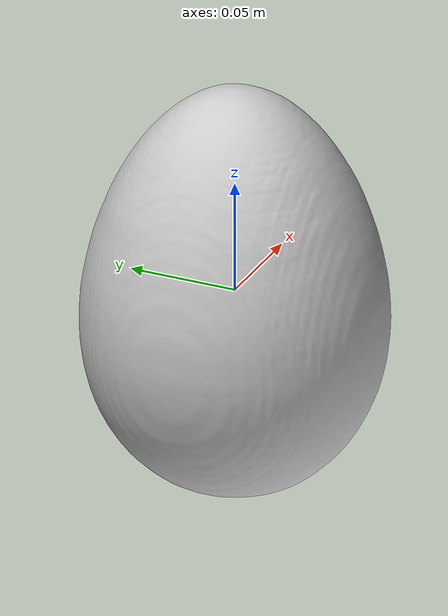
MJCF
<mujoco model="plate_54">
  <asset>
    <mesh file="visual/model_normalized_0.obj" name="model_normalized_0_vis" scale="0.185 0.185 0.185" refquat="1.0 0.0 0.0 0.0"/>
    <mesh file="collision/model_normalized_collision_22.obj" name="model_normalized_collision_22._coll" scale="0.185 0.185 0.185" refquat="1.0 0.0 0.0 0.0"/>
    <mesh file="collision/model_normalized_collision_23.obj" name="model_normalized_collision_23._coll" scale="0.185 0.185 0.185" refquat="1.0 0.0 0.0 0.0"/>
    <mesh file="collision/model_normalized_collision_21.obj" name="model_normalized_collision_21._coll" scale="0.185 0.185 0.185" refquat="1.0 0.0 0.0 0.0"/>
    <mesh file="collision/model_normalized_collision_20.obj" name="model_normalized_collision_20._coll" scale="0.185 0.185 0.185" refquat="1.0 0.0 0.0 0.0"/>
    <mesh file="collision/model_normalized_collision_24.obj" name="model_normalized_collision_24._coll" scale="0.185 0.185 0.185" refquat="1.0 0.0 0.0 0.0"/>
    <mesh file="collision/model_normalized_collision_30.obj" name="model_normalized_collision_30._coll" scale="0.185 0.185 0.185" refquat="1.0 0.0 0.0 0.0"/>
    <mesh file="collision/model_normalized_collision_18.obj" name="model_normalized_collision_18._coll" scale="0.185 0.185 0.185" refquat="1.0 0.0 0.0 0.0"/>
    <mesh file="collision/model_normalized_collision_19.obj" name="model_normalized_collision_19._coll" scale="0.185 0.185 0.185" refquat="1.0 0.0 0.0 0.0"/>
    <mesh file="collision/model_normalized_collision_31.obj" name="model_normalized_collision_31._coll" scale="0.185 0.185 0.185" refquat="1.0 0.0 0.0 0.0"/>
    <mesh file="collision/model_normalized_collision_25.obj" name="model_normalized_collision_25._coll" scale="0.185 0.185 0.185" refquat="1.0 0.0 0.0 0.0"/>
    <mesh file="collision/model_normalized_collision_27.obj" name="model_normalized_collision_27._coll" scale="0.185 0.185 0.185" refquat="1.0 0.0 0.0 0.0"/>
    <mesh file="collision/model_normalized_collision_26.obj" name="model_normalized_collision_26._coll" scale="0.185 0.185 0.185" refquat="1.0 0.0 0.0 0.0"/>
    <mesh file="collision/model_normalized_collision_9.obj" name="model_normalized_collision_9._coll" scale="0.185 0.185 0.185" refquat="1.0 0.0 0.0 0.0"/>
    <mesh file="collision/model_normalized_collision_8.obj" name="model_normalized_collision_8._coll" scale="0.185 0.185 0.185" refquat="1.0 0.0 0.0 0.0"/>
    <mesh file="collision/model_normalized_collision_6.obj" name="model_normalized_collision_6._coll" scale="0.185 0.185 0.185" refquat="1.0 0.0 0.0 0.0"/>
    <mesh file="collision/model_normalized_collision_7.obj" name="model_normalized_collision_7._coll" scale="0.185 0.185 0.185" refquat="1.0 0.0 0.0 0.0"/>
    <mesh file="collision/model_normalized_collision_5.obj" name="model_normalized_collision_5._coll" scale="0.185 0.185 0.185" refquat="1.0 0.0 0.0 0.0"/>
    <mesh file="collision/model_normalized_collision_4.obj" name="model_normalized_collision_4._coll" scale="0.185 0.185 0.185" refquat="1.0 0.0 0.0 0.0"/>
    <mesh file="collision/model_normalized_collision_0.obj" name="model_normalized_collision_0._coll" scale="0.185 0.185 0.185" refquat="1.0 0.0 0.0 0.0"/>
    <mesh file="collision/model_normalized_collision_1.obj" name="model_normalized_collision_1._coll" scale="0.185 0.185 0.185" refquat="1.0 0.0 0.0 0.0"/>
    <mesh file="collision/model_normalized_collision_3.obj" name="model_normalized_collision_3._coll" scale="0.185 0.185 0.185" refquat="1.0 0.0 0.0 0.0"/>
    <mesh file="collision/model_normalized_collision_2.obj" name="model_normalized_collision_2._coll" scale="0.185 0.185 0.185" refquat="1.0 0.0 0.0 0.0"/>
    <mesh file="collision/model_normalized_collision_17.obj" name="model_normalized_collision_17._coll" scale="0.185 0.185 0.185" refquat="1.0 0.0 0.0 0.0"/>
    <mesh file="collision/model_normalized_collision_16.obj" name="model_normalized_collision_16._coll" scale="0.185 0.185 0.185" refquat="1.0 0.0 0.0 0.0"/>
    <mesh file="collision/model_normalized_collision_28.obj" name="model_normalized_collision_28._coll" scale="0.185 0.185 0.185" refquat="1.0 0.0 0.0 0.0"/>
    <mesh file="collision/model_normalized_collision_14.obj" name="model_normalized_collision_14._coll" scale="0.185 0.185 0.185" refquat="1.0 0.0 0.0 0.0"/>
    <mesh file="collision/model_normalized_collision_15.obj" name="model_normalized_collision_15._coll" scale="0.185 0.185 0.185" refquat="1.0 0.0 0.0 0.0"/>
    <mesh file="collision/model_normalized_collision_29.obj" name="model_normalized_collision_29._coll" scale="0.185 0.185 0.185" refquat="1.0 0.0 0.0 0.0"/>
    <mesh file="collision/model_normalized_collision_11.obj" name="model_normalized_collision_11._coll" scale="0.185 0.185 0.185" refquat="1.0 0.0 0.0 0.0"/>
    <mesh file="collision/model_normalized_collision_10.obj" name="model_normalized_collision_10._coll" scale="0.185 0.185 0.185" refquat="1.0 0.0 0.0 0.0"/>
    <mesh file="collision/model_normalized_collision_12.obj" name="model_normalized_collision_12._coll" scale="0.185 0.185 0.185" refquat="1.0 0.0 0.0 0.0"/>
    <mesh file="collision/model_normalized_collision_13.obj" name="model_normalized_collision_13._coll" scale="0.185 0.185 0.185" refquat="1.0 0.0 0.0 0.0"/>
    <material name="Material.392" specular="0.12" shininess="0.08" rgba="0.800000 0.800000 0.800000 1.0"/>
  </asset>
  <custom><text name="material_gt" data="rigid_plastic"/></custom>
  <default>
    <default class="region">
      <geom group="1" conaffinity="0" contype="0" rgba="0 1 0 0"/>
    </default>
  </default>
  <worldbody>
    <body>
      <body name="object">
        <geom solimp="0.998 0.998 0.001" solref="0.001 1" density="100" friction="0.95 0.3 0.1" type="mesh" mesh="model_normalized_0_vis" conaffinity="0" contype="0" group="1" material="Material.392"/>
        <geom solimp="0.998 0.998 0.001" solref="0.001 1" density="100" friction="0.95 0.3 0.1" type="mesh" mesh="model_normalized_collision_22._coll" group="0" rgba="0.8 0.8 0.8 0.0"/>
        <geom solimp="0.998 0.998 0.001" solref="0.001 1" density="100" friction="0.95 0.3 0.1" type="mesh" mesh="model_normalized_collision_23._coll" group="0" rgba="0.8 0.8 0.8 0.0"/>
        <geom solimp="0.998 0.998 0.001" solref="0.001 1" density="100" friction="0.95 0.3 0.1" type="mesh" mesh="model_normalized_collision_21._coll" group="0" rgba="0.8 0.8 0.8 0.0"/>
        <geom solimp="0.998 0.998 0.001" solref="0.001 1" density="100" friction="0.95 0.3 0.1" type="mesh" mesh="model_normalized_collision_20._coll" group="0" rgba="0.8 0.8 0.8 0.0"/>
        <geom solimp="0.998 0.998 0.001" solref="0.001 1" density="100" friction="0.95 0.3 0.1" type="mesh" mesh="model_normalized_collision_24._coll" group="0" rgba="0.8 0.8 0.8 0.0"/>
        <geom solimp="0.998 0.998 0.001" solref="0.001 1" density="100" friction="0.95 0.3 0.1" type="mesh" mesh="model_normalized_collision_30._coll" group="0" rgba="0.8 0.8 0.8 0.0"/>
        <geom solimp="0.998 0.998 0.001" solref="0.001 1" density="100" friction="0.95 0.3 0.1" type="mesh" mesh="model_normalized_collision_18._coll" group="0" rgba="0.8 0.8 0.8 0.0"/>
        <geom solimp="0.998 0.998 0.001" solref="0.001 1" density="100" friction="0.95 0.3 0.1" type="mesh" mesh="model_normalized_collision_19._coll" group="0" rgba="0.8 0.8 0.8 0.0"/>
        <geom solimp="0.998 0.998 0.001" solref="0.001 1" density="100" friction="0.95 0.3 0.1" type="mesh" mesh="model_normalized_collision_31._coll" group="0" rgba="0.8 0.8 0.8 0.0"/>
        <geom solimp="0.998 0.998 0.001" solref="0.001 1" density="100" friction="0.95 0.3 0.1" type="mesh" mesh="model_normalized_collision_25._coll" group="0" rgba="0.8 0.8 0.8 0.0"/>
        <geom solimp="0.998 0.998 0.001" solref="0.001 1" density="100" friction="0.95 0.3 0.1" type="mesh" mesh="model_normalized_collision_27._coll" group="0" rgba="0.8 0.8 0.8 0.0"/>
        <geom solimp="0.998 0.998 0.001" solref="0.001 1" density="100" friction="0.95 0.3 0.1" type="mesh" mesh="model_normalized_collision_26._coll" group="0" rgba="0.8 0.8 0.8 0.0"/>
        <geom solimp="0.998 0.998 0.001" solref="0.001 1" density="100" friction="0.95 0.3 0.1" type="mesh" mesh="model_normalized_collision_9._coll" group="0" rgba="0.8 0.8 0.8 0.0"/>
        <geom solimp="0.998 0.998 0.001" solref="0.001 1" density="100" friction="0.95 0.3 0.1" type="mesh" mesh="model_normalized_collision_8._coll" group="0" rgba="0.8 0.8 0.8 0.0"/>
        <geom solimp="0.998 0.998 0.001" solref="0.001 1" density="100" friction="0.95 0.3 0.1" type="mesh" mesh="model_normalized_collision_6._coll" group="0" rgba="0.8 0.8 0.8 0.0"/>
        <geom solimp="0.998 0.998 0.001" solref="0.001 1" density="100" friction="0.95 0.3 0.1" type="mesh" mesh="model_normalized_collision_7._coll" group="0" rgba="0.8 0.8 0.8 0.0"/>
        <geom solimp="0.998 0.998 0.001" solref="0.001 1" density="100" friction="0.95 0.3 0.1" type="mesh" mesh="model_normalized_collision_5._coll" group="0" rgba="0.8 0.8 0.8 0.0"/>
        <geom solimp="0.998 0.998 0.001" solref="0.001 1" density="100" friction="0.95 0.3 0.1" type="mesh" mesh="model_normalized_collision_4._coll" group="0" rgba="0.8 0.8 0.8 0.0"/>
        <geom solimp="0.998 0.998 0.001" solref="0.001 1" density="100" friction="0.95 0.3 0.1" type="mesh" mesh="model_normalized_collision_0._coll" group="0" rgba="0.8 0.8 0.8 0.0"/>
        <geom solimp="0.998 0.998 0.001" solref="0.001 1" density="100" friction="0.95 0.3 0.1" type="mesh" mesh="model_normalized_collision_1._coll" group="0" rgba="0.8 0.8 0.8 0.0"/>
        <geom solimp="0.998 0.998 0.001" solref="0.001 1" density="100" friction="0.95 0.3 0.1" type="mesh" mesh="model_normalized_collision_3._coll" group="0" rgba="0.8 0.8 0.8 0.0"/>
        <geom solimp="0.998 0.998 0.001" solref="0.001 1" density="100" friction="0.95 0.3 0.1" type="mesh" mesh="model_normalized_collision_2._coll" group="0" rgba="0.8 0.8 0.8 0.0"/>
        <geom solimp="0.998 0.998 0.001" solref="0.001 1" density="100" friction="0.95 0.3 0.1" type="mesh" mesh="model_normalized_collision_17._coll" group="0" rgba="0.8 0.8 0.8 0.0"/>
        <geom solimp="0.998 0.998 0.001" solref="0.001 1" density="100" friction="0.95 0.3 0.1" type="mesh" mesh="model_normalized_collision_16._coll" group="0" rgba="0.8 0.8 0.8 0.0"/>
        <geom solimp="0.998 0.998 0.001" solref="0.001 1" density="100" friction="0.95 0.3 0.1" type="mesh" mesh="model_normalized_collision_28._coll" group="0" rgba="0.8 0.8 0.8 0.0"/>
        <geom solimp="0.998 0.998 0.001" solref="0.001 1" density="100" friction="0.95 0.3 0.1" type="mesh" mesh="model_normalized_collision_14._coll" group="0" rgba="0.8 0.8 0.8 0.0"/>
        <geom solimp="0.998 0.998 0.001" solref="0.001 1" density="100" friction="0.95 0.3 0.1" type="mesh" mesh="model_normalized_collision_15._coll" group="0" rgba="0.8 0.8 0.8 0.0"/>
        <geom solimp="0.998 0.998 0.001" solref="0.001 1" density="100" friction="0.95 0.3 0.1" type="mesh" mesh="model_normalized_collision_29._coll" group="0" rgba="0.8 0.8 0.8 0.0"/>
        <geom solimp="0.998 0.998 0.001" solref="0.001 1" density="100" friction="0.95 0.3 0.1" type="mesh" mesh="model_normalized_collision_11._coll" group="0" rgba="0.8 0.8 0.8 0.0"/>
        <geom solimp="0.998 0.998 0.001" solref="0.001 1" density="100" friction="0.95 0.3 0.1" type="mesh" mesh="model_normalized_collision_10._coll" group="0" rgba="0.8 0.8 0.8 0.0"/>
        <geom solimp="0.998 0.998 0.001" solref="0.001 1" density="100" friction="0.95 0.3 0.1" type="mesh" mesh="model_normalized_collision_12._coll" group="0" rgba="0.8 0.8 0.8 0.0"/>
        <geom solimp="0.998 0.998 0.001" solref="0.001 1" density="100" friction="0.95 0.3 0.1" type="mesh" mesh="model_normalized_collision_13._coll" group="0" rgba="0.8 0.8 0.8 0.0"/>
        <geom class="region" name="reg_bbox" type="box" pos="-0.0002503327499999995 9.249999995131208e-10 -9.250000000335379e-09" size="0.09091674964999999 0.0909167663 0.005545608099999999"/>
      </body>
    </body>
  </worldbody>
</mujoco>
